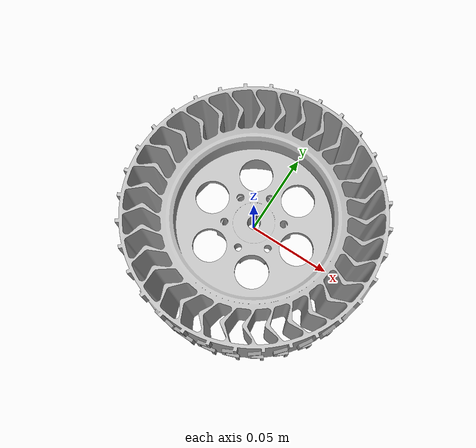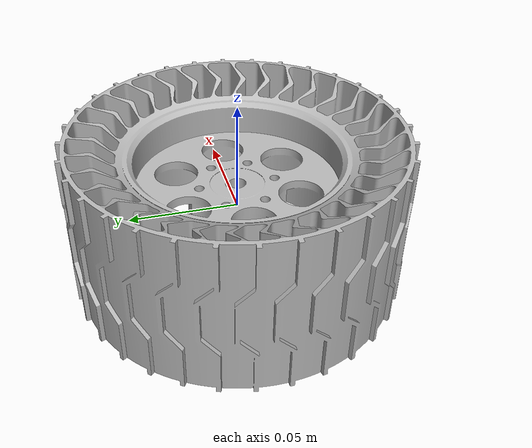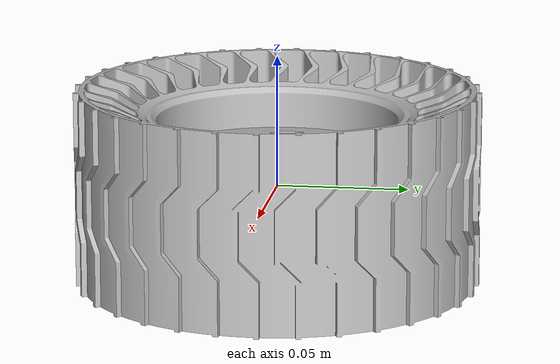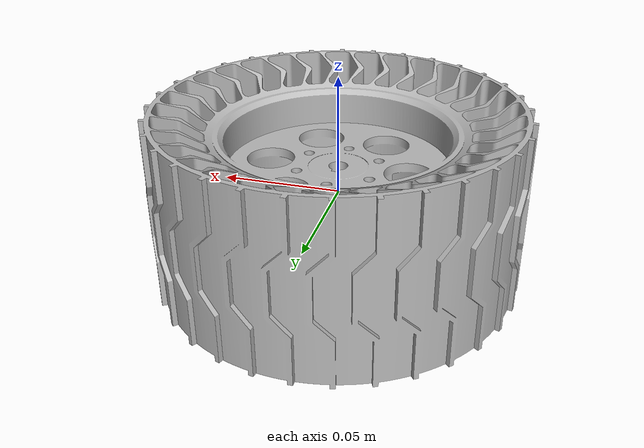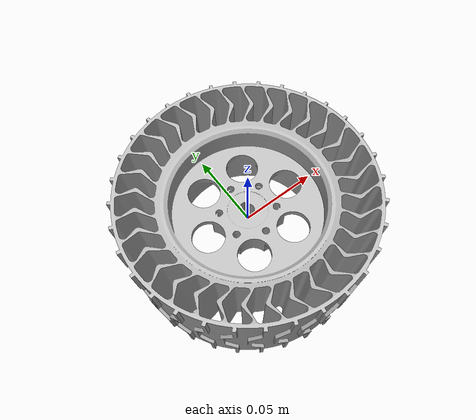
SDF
<?xml version="1.0"?>
<sdf version="1.9">
  <model name="wheel_assembly">
    <static>false</static>
    <link name="link">
      <inertial>
        <mass>0.875214</mass>
        <pose>0.000000 -0.000001 0.000658 0 0 0</pose>
        <inertia>
          <ixx>1.80270180e-03</ixx>
          <ixy>7.25388954e-09</ixy>
          <ixz>1.35862275e-12</ixz>
          <iyy>1.80269713e-03</iyy>
          <iyz>2.55782195e-09</iyz>
          <izz>3.04763426e-03</izz>
        </inertia>
      </inertial>
      <visual name="visual">
        <geometry>
          <mesh>
            <uri>model://wheel_assembly/meshes/wheel_assembly.stl</uri>
            <scale>0.001 0.001 0.001</scale>
          </mesh>
        </geometry>
      </visual>
      <collision name="collision">
        <geometry>
          <mesh>
            <uri>model://wheel_assembly/meshes/wheel_assembly.stl</uri>
            <scale>0.001 0.001 0.001</scale>
          </mesh>
        </geometry>
      </collision>
    </link>
  </model>
</sdf>
